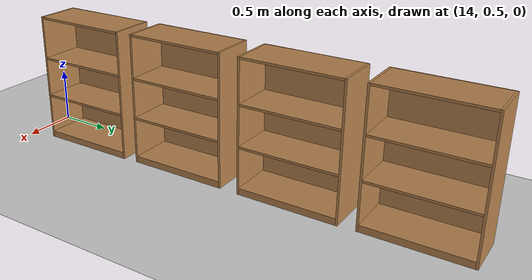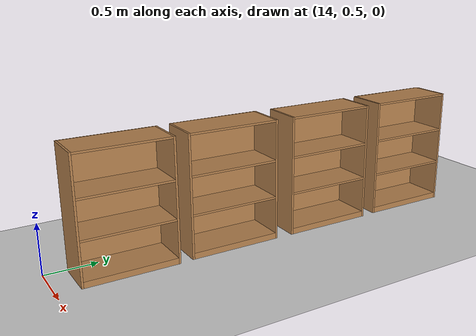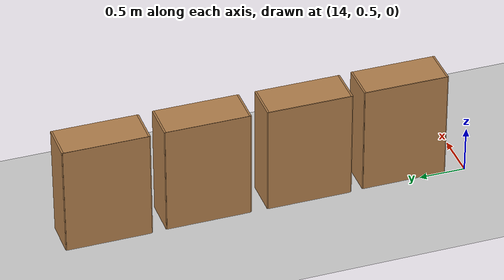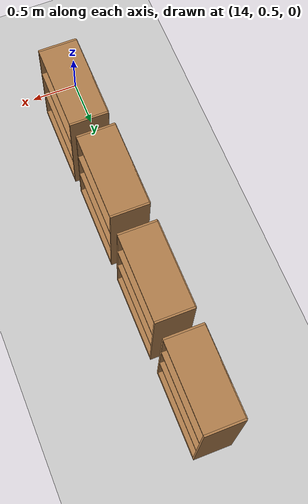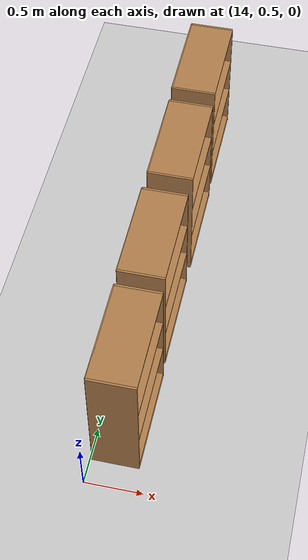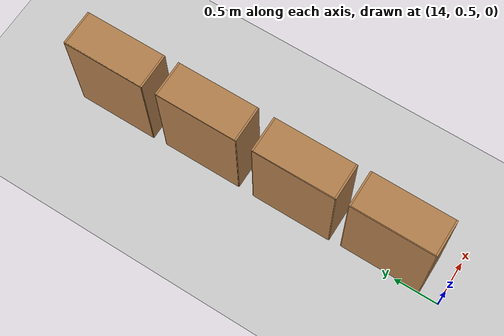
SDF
<sdf version="1.9">
 <world name="empty">
  <model name="ground_plane">
   <static>true</static>
   <link name="link">
    <collision name="collision">
     <geometry><plane><normal>0 0 1</normal><size>100 100</size></plane></geometry>
    </collision>
    <visual name="visual">
     <geometry><plane><normal>0 0 1</normal><size>100 100</size></plane></geometry>
     <material>
      <ambient>0.8 0.8 0.8 1</ambient>
      <diffuse>0.8 0.8 0.8 1</diffuse>
      <specular>0.8 0.8 0.8 1</specular>
     </material>
    </visual>
    <inertial>
     <mass>1</mass>
     <inertia><ixx>1</ixx><ixy>0</ixy><ixz>0</ixz><iyy>1</iyy><iyz>0</iyz><izz>1</izz></inertia>
    </inertial>
   </link>
  </model>
  <model name="Bookshelf_1">
   <static>true</static>
   <link name="link">
    <inertial>
     <mass>1</mass>
     <inertia><ixx>1</ixx><ixy>0</ixy><ixz>0</ixz><iyy>1</iyy><iyz>0</iyz><izz>1</izz></inertia>
    </inertial>
    <collision name="back">
     <pose>0 0.005 0.6 0 0 0</pose>
     <geometry><box><size>0.9 0.01 1.2</size></box></geometry>
    </collision>
    <visual name="visual1">
     <pose>0 0.005 0.6 0 0 0</pose>
     <geometry><box><size>0.9 0.01 1.2</size></box></geometry>
     <material>
      <diffuse>1 1 1 1</diffuse>
      <script><uri>file://media/materials/scripts/gazebo.material</uri><name>Gazebo/Wood</name></script>
      <pbr>
       <metal>
        <albedo_map>https://fuel.gazebosim.org/1.0/openrobotics/models/bookshelf/4/files/bookshelf_diffuse.jpg</albedo_map>
       </metal>
      </pbr>
     </material>
    </visual>
    <collision name="left_side">
     <pose>0.45 -0.195 0.6 0 0 0</pose>
     <geometry><box><size>0.02 0.4 1.2</size></box></geometry>
    </collision>
    <visual name="visual2">
     <pose>0.45 -0.195 0.6 0 0 0</pose>
     <geometry><box><size>0.02 0.4 1.2</size></box></geometry>
     <material>
      <diffuse>1 1 1 1</diffuse>
      <script><uri>file://media/materials/scripts/gazebo.material</uri><name>Gazebo/Wood</name></script>
      <pbr>
       <metal>
        <albedo_map>https://fuel.gazebosim.org/1.0/openrobotics/models/bookshelf/4/files/bookshelf_diffuse.jpg</albedo_map>
       </metal>
      </pbr>
     </material>
    </visual>
    <collision name="right_side">
     <pose>-0.45 -0.195 0.6 0 0 0</pose>
     <geometry><box><size>0.02 0.4 1.2</size></box></geometry>
    </collision>
    <visual name="visual3">
     <pose>-0.45 -0.195 0.6 0 0 0</pose>
     <geometry><box><size>0.02 0.4 1.2</size></box></geometry>
     <material>
      <diffuse>1 1 1 1</diffuse>
      <script><uri>file://media/materials/scripts/gazebo.material</uri><name>Gazebo/Wood</name></script>
      <pbr>
       <metal>
        <albedo_map>https://fuel.gazebosim.org/1.0/openrobotics/models/bookshelf/4/files/bookshelf_diffuse.jpg</albedo_map>
       </metal>
      </pbr>
     </material>
    </visual>
    <collision name="bottom">
     <pose>0 -0.195 0.03 0 0 0</pose>
     <geometry><box><size>0.88 0.4 0.06</size></box></geometry>
    </collision>
    <visual name="visual4">
     <pose>0 -0.195 0.03 0 0 0</pose>
     <geometry><box><size>0.88 0.4 0.06</size></box></geometry>
     <material>
      <diffuse>1 1 1 1</diffuse>
      <script><uri>file://media/materials/scripts/gazebo.material</uri><name>Gazebo/Wood</name></script>
      <pbr>
       <metal>
        <albedo_map>https://fuel.gazebosim.org/1.0/openrobotics/models/bookshelf/4/files/bookshelf_diffuse.jpg</albedo_map>
       </metal>
      </pbr>
     </material>
    </visual>
    <collision name="top">
     <pose>0 -0.195 1.19 0 0 0</pose>
     <geometry><box><size>0.88 0.4 0.02</size></box></geometry>
    </collision>
    <visual name="visual5">
     <pose>0 -0.195 1.19 0 0 0</pose>
     <geometry><box><size>0.88 0.4 0.02</size></box></geometry>
     <material>
      <diffuse>1 1 1 1</diffuse>
      <script><uri>file://media/materials/scripts/gazebo.material</uri><name>Gazebo/Wood</name></script>
      <pbr>
       <metal>
        <albedo_map>https://fuel.gazebosim.org/1.0/openrobotics/models/bookshelf/4/files/bookshelf_diffuse.jpg</albedo_map>
       </metal>
      </pbr>
     </material>
    </visual>
    <collision name="low_shelf">
     <pose>0 -0.195 0.43 0 0 0</pose>
     <geometry><box><size>0.88 0.4 0.02</size></box></geometry>
    </collision>
    <visual name="visual6">
     <pose>0 -0.195 0.43 0 0 0</pose>
     <geometry><box><size>0.88 0.4 0.02</size></box></geometry>
     <material>
      <diffuse>1 1 1 1</diffuse>
      <script><uri>file://media/materials/scripts/gazebo.material</uri><name>Gazebo/Wood</name></script>
      <pbr>
       <metal>
        <albedo_map>https://fuel.gazebosim.org/1.0/openrobotics/models/bookshelf/4/files/bookshelf_diffuse.jpg</albedo_map>
       </metal>
      </pbr>
     </material>
    </visual>
    <collision name="high_shelf">
     <pose>0 -0.195 0.8 0 0 0</pose>
     <geometry><box><size>0.88 0.4 0.02</size></box></geometry>
    </collision>
    <visual name="visual7">
     <pose>0 -0.195 0.8 0 0 0</pose>
     <geometry><box><size>0.88 0.4 0.02</size></box></geometry>
     <material>
      <diffuse>1 1 1 1</diffuse>
      <script><uri>file://media/materials/scripts/gazebo.material</uri><name>Gazebo/Wood</name></script>
      <pbr>
       <metal>
        <albedo_map>https://fuel.gazebosim.org/1.0/openrobotics/models/bookshelf/4/files/bookshelf_diffuse.jpg</albedo_map>
       </metal>
      </pbr>
     </material>
    </visual>
   </link>
   <pose>14.0217 1.17534 0 0 -0 1.57</pose>
  </model>
  <model name="Bookshelf_1_1">
   <static>true</static>
   <link name="link">
    <inertial>
     <mass>1</mass>
     <inertia><ixx>1</ixx><ixy>0</ixy><ixz>0</ixz><iyy>1</iyy><iyz>0</iyz><izz>1</izz></inertia>
    </inertial>
    <collision name="back">
     <pose>0 0.005 0.6 0 0 0</pose>
     <geometry><box><size>0.9 0.01 1.2</size></box></geometry>
    </collision>
    <visual name="visual1">
     <pose>0 0.005 0.6 0 0 0</pose>
     <geometry><box><size>0.9 0.01 1.2</size></box></geometry>
     <material>
      <diffuse>1 1 1 1</diffuse>
      <script><uri>file://media/materials/scripts/gazebo.material</uri><name>Gazebo/Wood</name></script>
      <pbr>
       <metal>
        <albedo_map>https://fuel.gazebosim.org/1.0/openrobotics/models/bookshelf/4/files/bookshelf_diffuse.jpg</albedo_map>
       </metal>
      </pbr>
     </material>
    </visual>
    <collision name="left_side">
     <pose>0.45 -0.195 0.6 0 0 0</pose>
     <geometry><box><size>0.02 0.4 1.2</size></box></geometry>
    </collision>
    <visual name="visual2">
     <pose>0.45 -0.195 0.6 0 0 0</pose>
     <geometry><box><size>0.02 0.4 1.2</size></box></geometry>
     <material>
      <diffuse>1 1 1 1</diffuse>
      <script><uri>file://media/materials/scripts/gazebo.material</uri><name>Gazebo/Wood</name></script>
      <pbr>
       <metal>
        <albedo_map>https://fuel.gazebosim.org/1.0/openrobotics/models/bookshelf/4/files/bookshelf_diffuse.jpg</albedo_map>
       </metal>
      </pbr>
     </material>
    </visual>
    <collision name="right_side">
     <pose>-0.45 -0.195 0.6 0 0 0</pose>
     <geometry><box><size>0.02 0.4 1.2</size></box></geometry>
    </collision>
    <visual name="visual3">
     <pose>-0.45 -0.195 0.6 0 0 0</pose>
     <geometry><box><size>0.02 0.4 1.2</size></box></geometry>
     <material>
      <diffuse>1 1 1 1</diffuse>
      <script><uri>file://media/materials/scripts/gazebo.material</uri><name>Gazebo/Wood</name></script>
      <pbr>
       <metal>
        <albedo_map>https://fuel.gazebosim.org/1.0/openrobotics/models/bookshelf/4/files/bookshelf_diffuse.jpg</albedo_map>
       </metal>
      </pbr>
     </material>
    </visual>
    <collision name="bottom">
     <pose>0 -0.195 0.03 0 0 0</pose>
     <geometry><box><size>0.88 0.4 0.06</size></box></geometry>
    </collision>
    <visual name="visual4">
     <pose>0 -0.195 0.03 0 0 0</pose>
     <geometry><box><size>0.88 0.4 0.06</size></box></geometry>
     <material>
      <diffuse>1 1 1 1</diffuse>
      <script><uri>file://media/materials/scripts/gazebo.material</uri><name>Gazebo/Wood</name></script>
      <pbr>
       <metal>
        <albedo_map>https://fuel.gazebosim.org/1.0/openrobotics/models/bookshelf/4/files/bookshelf_diffuse.jpg</albedo_map>
       </metal>
      </pbr>
     </material>
    </visual>
    <collision name="top">
     <pose>0 -0.195 1.19 0 0 0</pose>
     <geometry><box><size>0.88 0.4 0.02</size></box></geometry>
    </collision>
    <visual name="visual5">
     <pose>0 -0.195 1.19 0 0 0</pose>
     <geometry><box><size>0.88 0.4 0.02</size></box></geometry>
     <material>
      <diffuse>1 1 1 1</diffuse>
      <script><uri>file://media/materials/scripts/gazebo.material</uri><name>Gazebo/Wood</name></script>
      <pbr>
       <metal>
        <albedo_map>https://fuel.gazebosim.org/1.0/openrobotics/models/bookshelf/4/files/bookshelf_diffuse.jpg</albedo_map>
       </metal>
      </pbr>
     </material>
    </visual>
    <collision name="low_shelf">
     <pose>0 -0.195 0.43 0 0 0</pose>
     <geometry><box><size>0.88 0.4 0.02</size></box></geometry>
    </collision>
    <visual name="visual6">
     <pose>0 -0.195 0.43 0 0 0</pose>
     <geometry><box><size>0.88 0.4 0.02</size></box></geometry>
     <material>
      <diffuse>1 1 1 1</diffuse>
      <script><uri>file://media/materials/scripts/gazebo.material</uri><name>Gazebo/Wood</name></script>
      <pbr>
       <metal>
        <albedo_map>https://fuel.gazebosim.org/1.0/openrobotics/models/bookshelf/4/files/bookshelf_diffuse.jpg</albedo_map>
       </metal>
      </pbr>
     </material>
    </visual>
    <collision name="high_shelf">
     <pose>0 -0.195 0.8 0 0 0</pose>
     <geometry><box><size>0.88 0.4 0.02</size></box></geometry>
    </collision>
    <visual name="visual7">
     <pose>0 -0.195 0.8 0 0 0</pose>
     <geometry><box><size>0.88 0.4 0.02</size></box></geometry>
     <material>
      <diffuse>1 1 1 1</diffuse>
      <script><uri>file://media/materials/scripts/gazebo.material</uri><name>Gazebo/Wood</name></script>
      <pbr>
       <metal>
        <albedo_map>https://fuel.gazebosim.org/1.0/openrobotics/models/bookshelf/4/files/bookshelf_diffuse.jpg</albedo_map>
       </metal>
      </pbr>
     </material>
    </visual>
   </link>
   <pose>14.009 2.2189 0 0 -0 1.57</pose>
  </model>
  <model name="Bookshelf_1_1_1">
   <static>true</static>
   <link name="link">
    <inertial>
     <mass>1</mass>
     <inertia><ixx>1</ixx><ixy>0</ixy><ixz>0</ixz><iyy>1</iyy><iyz>0</iyz><izz>1</izz></inertia>
    </inertial>
    <collision name="back">
     <pose>0 0.005 0.6 0 0 0</pose>
     <geometry><box><size>0.9 0.01 1.2</size></box></geometry>
    </collision>
    <visual name="visual1">
     <pose>0 0.005 0.6 0 0 0</pose>
     <geometry><box><size>0.9 0.01 1.2</size></box></geometry>
     <material>
      <diffuse>1 1 1 1</diffuse>
      <script><uri>file://media/materials/scripts/gazebo.material</uri><name>Gazebo/Wood</name></script>
      <pbr>
       <metal>
        <albedo_map>https://fuel.gazebosim.org/1.0/openrobotics/models/bookshelf/4/files/bookshelf_diffuse.jpg</albedo_map>
       </metal>
      </pbr>
     </material>
    </visual>
    <collision name="left_side">
     <pose>0.45 -0.195 0.6 0 0 0</pose>
     <geometry><box><size>0.02 0.4 1.2</size></box></geometry>
    </collision>
    <visual name="visual2">
     <pose>0.45 -0.195 0.6 0 0 0</pose>
     <geometry><box><size>0.02 0.4 1.2</size></box></geometry>
     <material>
      <diffuse>1 1 1 1</diffuse>
      <script><uri>file://media/materials/scripts/gazebo.material</uri><name>Gazebo/Wood</name></script>
      <pbr>
       <metal>
        <albedo_map>https://fuel.gazebosim.org/1.0/openrobotics/models/bookshelf/4/files/bookshelf_diffuse.jpg</albedo_map>
       </metal>
      </pbr>
     </material>
    </visual>
    <collision name="right_side">
     <pose>-0.45 -0.195 0.6 0 0 0</pose>
     <geometry><box><size>0.02 0.4 1.2</size></box></geometry>
    </collision>
    <visual name="visual3">
     <pose>-0.45 -0.195 0.6 0 0 0</pose>
     <geometry><box><size>0.02 0.4 1.2</size></box></geometry>
     <material>
      <diffuse>1 1 1 1</diffuse>
      <script><uri>file://media/materials/scripts/gazebo.material</uri><name>Gazebo/Wood</name></script>
      <pbr>
       <metal>
        <albedo_map>https://fuel.gazebosim.org/1.0/openrobotics/models/bookshelf/4/files/bookshelf_diffuse.jpg</albedo_map>
       </metal>
      </pbr>
     </material>
    </visual>
    <collision name="bottom">
     <pose>0 -0.195 0.03 0 0 0</pose>
     <geometry><box><size>0.88 0.4 0.06</size></box></geometry>
    </collision>
    <visual name="visual4">
     <pose>0 -0.195 0.03 0 0 0</pose>
     <geometry><box><size>0.88 0.4 0.06</size></box></geometry>
     <material>
      <diffuse>1 1 1 1</diffuse>
      <script><uri>file://media/materials/scripts/gazebo.material</uri><name>Gazebo/Wood</name></script>
      <pbr>
       <metal>
        <albedo_map>https://fuel.gazebosim.org/1.0/openrobotics/models/bookshelf/4/files/bookshelf_diffuse.jpg</albedo_map>
       </metal>
      </pbr>
     </material>
    </visual>
    <collision name="top">
     <pose>0 -0.195 1.19 0 0 0</pose>
     <geometry><box><size>0.88 0.4 0.02</size></box></geometry>
    </collision>
    <visual name="visual5">
     <pose>0 -0.195 1.19 0 0 0</pose>
     <geometry><box><size>0.88 0.4 0.02</size></box></geometry>
     <material>
      <diffuse>1 1 1 1</diffuse>
      <script><uri>file://media/materials/scripts/gazebo.material</uri><name>Gazebo/Wood</name></script>
      <pbr>
       <metal>
        <albedo_map>https://fuel.gazebosim.org/1.0/openrobotics/models/bookshelf/4/files/bookshelf_diffuse.jpg</albedo_map>
       </metal>
      </pbr>
     </material>
    </visual>
    <collision name="low_shelf">
     <pose>0 -0.195 0.43 0 0 0</pose>
     <geometry><box><size>0.88 0.4 0.02</size></box></geometry>
    </collision>
    <visual name="visual6">
     <pose>0 -0.195 0.43 0 0 0</pose>
     <geometry><box><size>0.88 0.4 0.02</size></box></geometry>
     <material>
      <diffuse>1 1 1 1</diffuse>
      <script><uri>file://media/materials/scripts/gazebo.material</uri><name>Gazebo/Wood</name></script>
      <pbr>
       <metal>
        <albedo_map>https://fuel.gazebosim.org/1.0/openrobotics/models/bookshelf/4/files/bookshelf_diffuse.jpg</albedo_map>
       </metal>
      </pbr>
     </material>
    </visual>
    <collision name="high_shelf">
     <pose>0 -0.195 0.8 0 0 0</pose>
     <geometry><box><size>0.88 0.4 0.02</size></box></geometry>
    </collision>
    <visual name="visual7">
     <pose>0 -0.195 0.8 0 0 0</pose>
     <geometry><box><size>0.88 0.4 0.02</size></box></geometry>
     <material>
      <diffuse>1 1 1 1</diffuse>
      <script><uri>file://media/materials/scripts/gazebo.material</uri><name>Gazebo/Wood</name></script>
      <pbr>
       <metal>
        <albedo_map>https://fuel.gazebosim.org/1.0/openrobotics/models/bookshelf/4/files/bookshelf_diffuse.jpg</albedo_map>
       </metal>
      </pbr>
     </material>
    </visual>
   </link>
   <pose>14.0126 3.3057 0 0 -0 1.57</pose>
  </model>
  <model name="Bookshelf_1_1_2">
   <static>true</static>
   <link name="link">
    <inertial>
     <mass>1</mass>
     <inertia><ixx>1</ixx><ixy>0</ixy><ixz>0</ixz><iyy>1</iyy><iyz>0</iyz><izz>1</izz></inertia>
    </inertial>
    <collision name="back">
     <pose>0 0.005 0.6 0 0 0</pose>
     <geometry><box><size>0.9 0.01 1.2</size></box></geometry>
    </collision>
    <visual name="visual1">
     <pose>0 0.005 0.6 0 0 0</pose>
     <geometry><box><size>0.9 0.01 1.2</size></box></geometry>
     <material>
      <diffuse>1 1 1 1</diffuse>
      <script><uri>file://media/materials/scripts/gazebo.material</uri><name>Gazebo/Wood</name></script>
      <pbr>
       <metal>
        <albedo_map>https://fuel.gazebosim.org/1.0/openrobotics/models/bookshelf/4/files/bookshelf_diffuse.jpg</albedo_map>
       </metal>
      </pbr>
     </material>
    </visual>
    <collision name="left_side">
     <pose>0.45 -0.195 0.6 0 0 0</pose>
     <geometry><box><size>0.02 0.4 1.2</size></box></geometry>
    </collision>
    <visual name="visual2">
     <pose>0.45 -0.195 0.6 0 0 0</pose>
     <geometry><box><size>0.02 0.4 1.2</size></box></geometry>
     <material>
      <diffuse>1 1 1 1</diffuse>
      <script><uri>file://media/materials/scripts/gazebo.material</uri><name>Gazebo/Wood</name></script>
      <pbr>
       <metal>
        <albedo_map>https://fuel.gazebosim.org/1.0/openrobotics/models/bookshelf/4/files/bookshelf_diffuse.jpg</albedo_map>
       </metal>
      </pbr>
     </material>
    </visual>
    <collision name="right_side">
     <pose>-0.45 -0.195 0.6 0 0 0</pose>
     <geometry><box><size>0.02 0.4 1.2</size></box></geometry>
    </collision>
    <visual name="visual3">
     <pose>-0.45 -0.195 0.6 0 0 0</pose>
     <geometry><box><size>0.02 0.4 1.2</size></box></geometry>
     <material>
      <diffuse>1 1 1 1</diffuse>
      <script><uri>file://media/materials/scripts/gazebo.material</uri><name>Gazebo/Wood</name></script>
      <pbr>
       <metal>
        <albedo_map>https://fuel.gazebosim.org/1.0/openrobotics/models/bookshelf/4/files/bookshelf_diffuse.jpg</albedo_map>
       </metal>
      </pbr>
     </material>
    </visual>
    <collision name="bottom">
     <pose>0 -0.195 0.03 0 0 0</pose>
     <geometry><box><size>0.88 0.4 0.06</size></box></geometry>
    </collision>
    <visual name="visual4">
     <pose>0 -0.195 0.03 0 0 0</pose>
     <geometry><box><size>0.88 0.4 0.06</size></box></geometry>
     <material>
      <diffuse>1 1 1 1</diffuse>
      <script><uri>file://media/materials/scripts/gazebo.material</uri><name>Gazebo/Wood</name></script>
      <pbr>
       <metal>
        <albedo_map>https://fuel.gazebosim.org/1.0/openrobotics/models/bookshelf/4/files/bookshelf_diffuse.jpg</albedo_map>
       </metal>
      </pbr>
     </material>
    </visual>
    <collision name="top">
     <pose>0 -0.195 1.19 0 0 0</pose>
     <geometry><box><size>0.88 0.4 0.02</size></box></geometry>
    </collision>
    <visual name="visual5">
     <pose>0 -0.195 1.19 0 0 0</pose>
     <geometry><box><size>0.88 0.4 0.02</size></box></geometry>
     <material>
      <diffuse>1 1 1 1</diffuse>
      <script><uri>file://media/materials/scripts/gazebo.material</uri><name>Gazebo/Wood</name></script>
      <pbr>
       <metal>
        <albedo_map>https://fuel.gazebosim.org/1.0/openrobotics/models/bookshelf/4/files/bookshelf_diffuse.jpg</albedo_map>
       </metal>
      </pbr>
     </material>
    </visual>
    <collision name="low_shelf">
     <pose>0 -0.195 0.43 0 0 0</pose>
     <geometry><box><size>0.88 0.4 0.02</size></box></geometry>
    </collision>
    <visual name="visual6">
     <pose>0 -0.195 0.43 0 0 0</pose>
     <geometry><box><size>0.88 0.4 0.02</size></box></geometry>
     <material>
      <diffuse>1 1 1 1</diffuse>
      <script><uri>file://media/materials/scripts/gazebo.material</uri><name>Gazebo/Wood</name></script>
      <pbr>
       <metal>
        <albedo_map>https://fuel.gazebosim.org/1.0/openrobotics/models/bookshelf/4/files/bookshelf_diffuse.jpg</albedo_map>
       </metal>
      </pbr>
     </material>
    </visual>
    <collision name="high_shelf">
     <pose>0 -0.195 0.8 0 0 0</pose>
     <geometry><box><size>0.88 0.4 0.02</size></box></geometry>
    </collision>
    <visual name="visual7">
     <pose>0 -0.195 0.8 0 0 0</pose>
     <geometry><box><size>0.88 0.4 0.02</size></box></geometry>
     <material>
      <diffuse>1 1 1 1</diffuse>
      <script><uri>file://media/materials/scripts/gazebo.material</uri><name>Gazebo/Wood</name></script>
      <pbr>
       <metal>
        <albedo_map>https://fuel.gazebosim.org/1.0/openrobotics/models/bookshelf/4/files/bookshelf_diffuse.jpg</albedo_map>
       </metal>
      </pbr>
     </material>
    </visual>
   </link>
   <pose>14.0011 4.37035 0 0 -0 1.57</pose>
  </model>
 </world>
</sdf>
